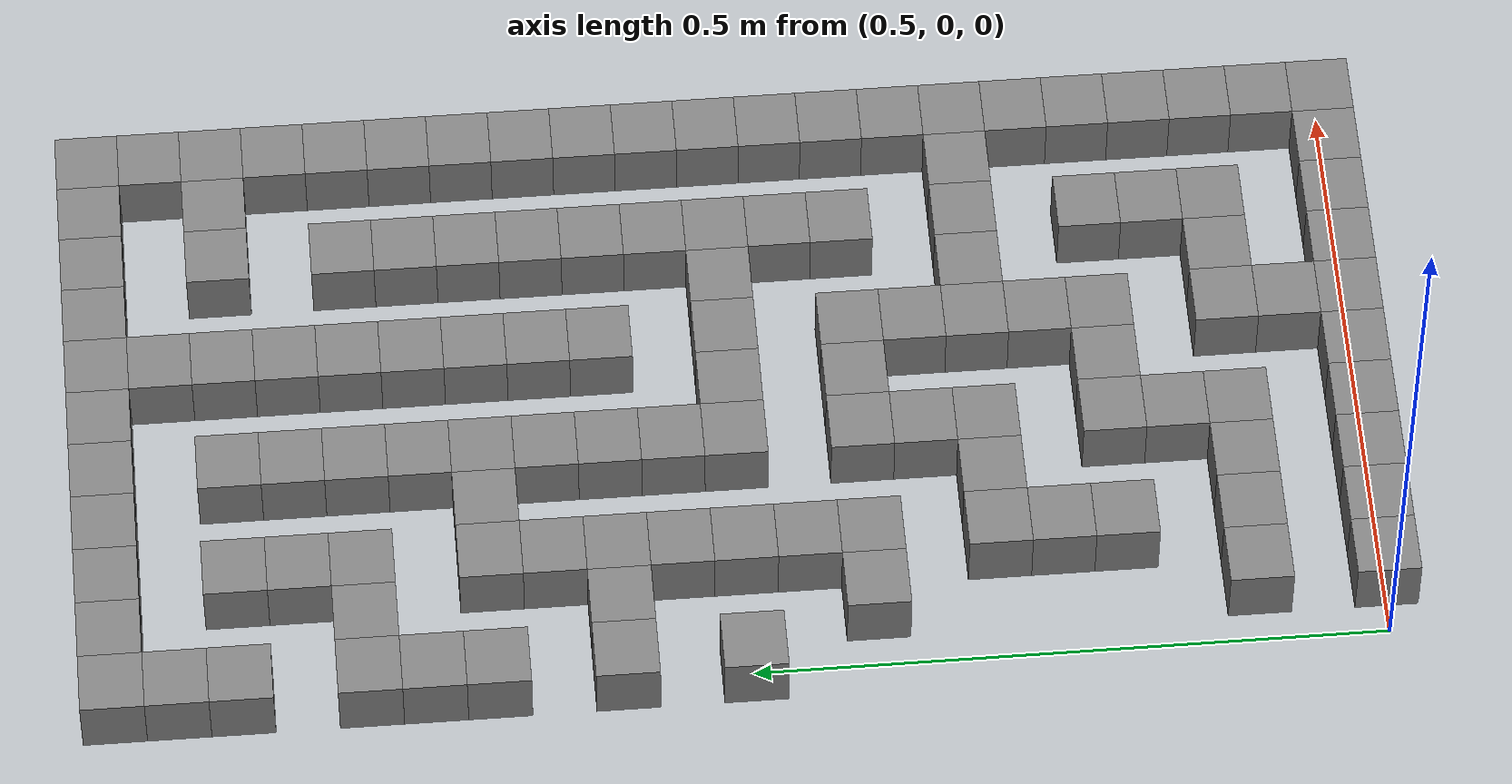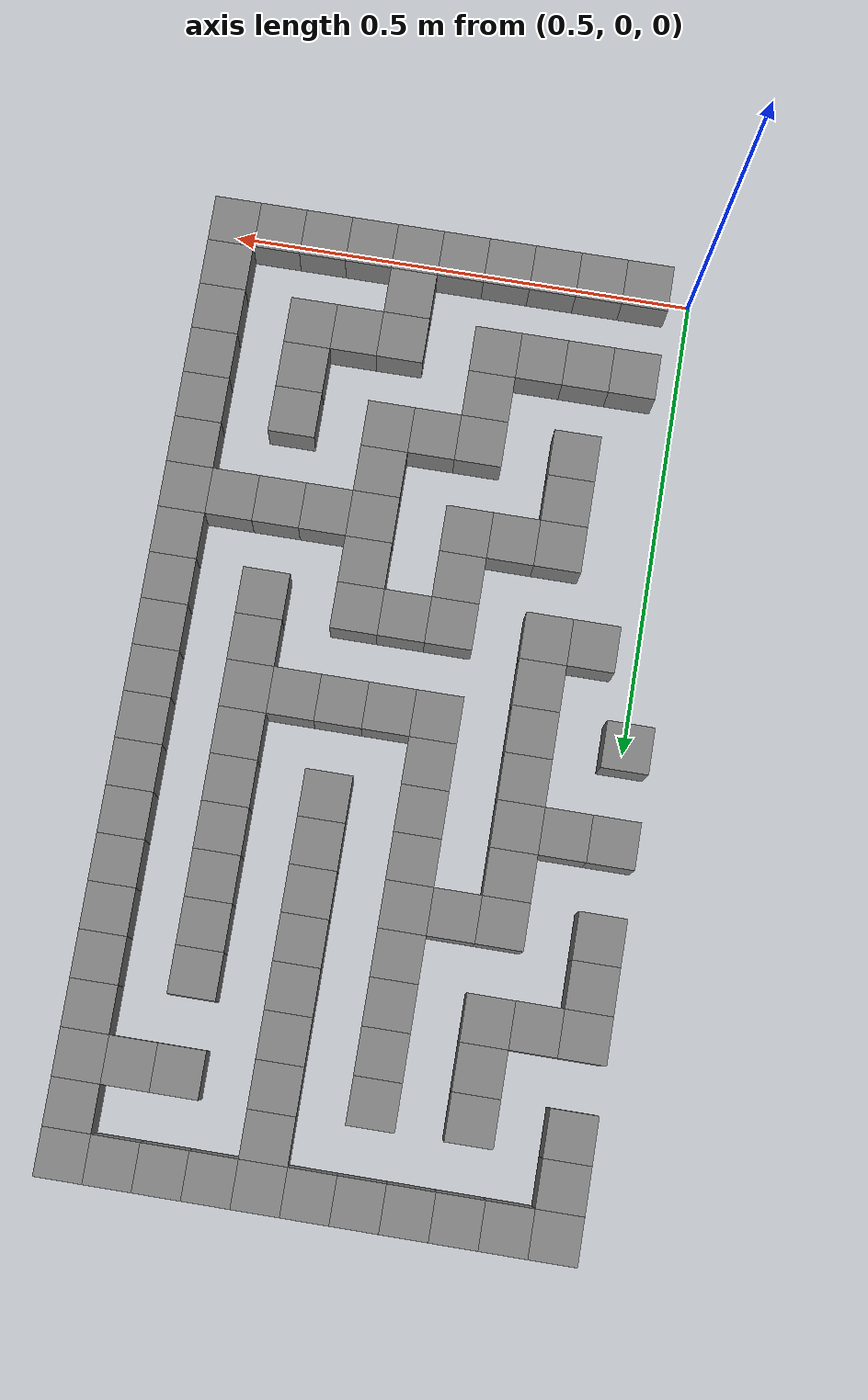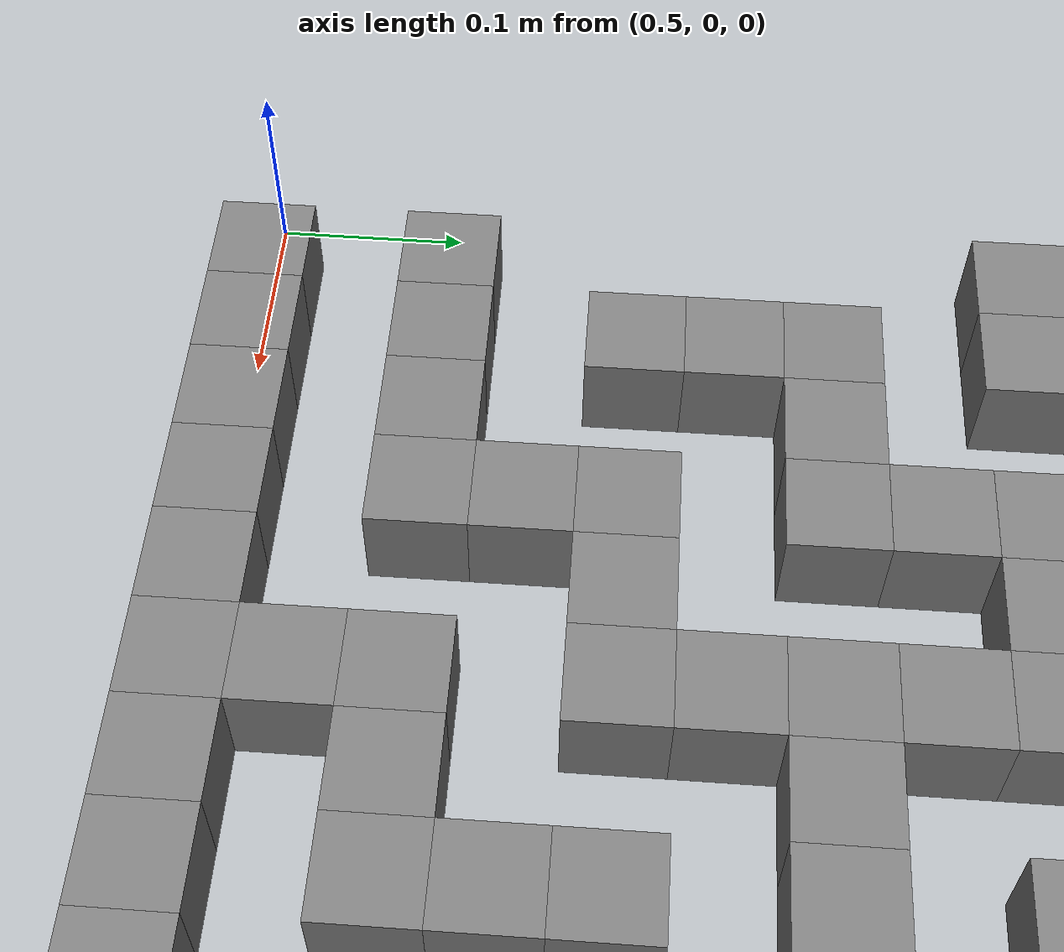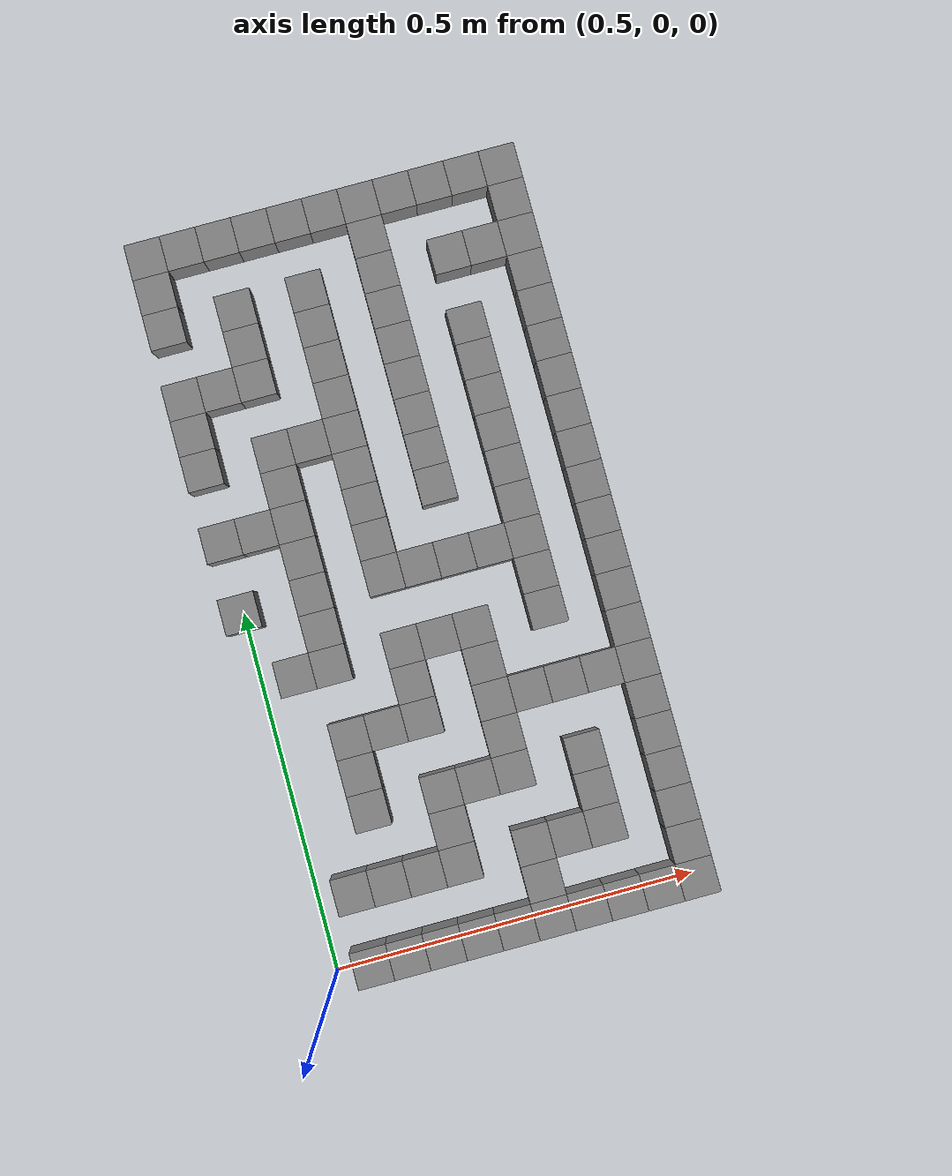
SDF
<sdf version="1.9">
 <model name="maze">
  <static>true</static>
  <link name="wall_10_10">
   <pose>0.5 0.5 0.025 0 0 0</pose>
   <collision name="collision"><geometry><box><size>0.05 0.05 0.05</size></box></geometry></collision>
   <visual name="visual">
    <geometry><box><size>0.05 0.05 0.05</size></box></geometry>
    <material><ambient>0.5 0.5 0.5 1</ambient></material>
   </visual>
  </link>
  <link name="wall_10_12">
   <pose>0.5 0.6000000000000001 0.025 0 0 0</pose>
   <collision name="collision"><geometry><box><size>0.05 0.05 0.05</size></box></geometry></collision>
   <visual name="visual">
    <geometry><box><size>0.05 0.05 0.05</size></box></geometry>
    <material><ambient>0.5 0.5 0.5 1</ambient></material>
   </visual>
  </link>
  <link name="wall_10_14">
   <pose>0.5 0.7000000000000001 0.025 0 0 0</pose>
   <collision name="collision"><geometry><box><size>0.05 0.05 0.05</size></box></geometry></collision>
   <visual name="visual">
    <geometry><box><size>0.05 0.05 0.05</size></box></geometry>
    <material><ambient>0.5 0.5 0.5 1</ambient></material>
   </visual>
  </link>
  <link name="wall_10_15">
   <pose>0.5 0.75 0.025 0 0 0</pose>
   <collision name="collision"><geometry><box><size>0.05 0.05 0.05</size></box></geometry></collision>
   <visual name="visual">
    <geometry><box><size>0.05 0.05 0.05</size></box></geometry>
    <material><ambient>0.5 0.5 0.5 1</ambient></material>
   </visual>
  </link>
  <link name="wall_10_16">
   <pose>0.5 0.8 0.025 0 0 0</pose>
   <collision name="collision"><geometry><box><size>0.05 0.05 0.05</size></box></geometry></collision>
   <visual name="visual">
    <geometry><box><size>0.05 0.05 0.05</size></box></geometry>
    <material><ambient>0.5 0.5 0.5 1</ambient></material>
   </visual>
  </link>
  <link name="wall_10_18">
   <pose>0.5 0.9 0.025 0 0 0</pose>
   <collision name="collision"><geometry><box><size>0.05 0.05 0.05</size></box></geometry></collision>
   <visual name="visual">
    <geometry><box><size>0.05 0.05 0.05</size></box></geometry>
    <material><ambient>0.5 0.5 0.5 1</ambient></material>
   </visual>
  </link>
  <link name="wall_10_19">
   <pose>0.5 0.9500000000000001 0.025 0 0 0</pose>
   <collision name="collision"><geometry><box><size>0.05 0.05 0.05</size></box></geometry></collision>
   <visual name="visual">
    <geometry><box><size>0.05 0.05 0.05</size></box></geometry>
    <material><ambient>0.5 0.5 0.5 1</ambient></material>
   </visual>
  </link>
  <link name="wall_10_20">
   <pose>0.5 1.0 0.025 0 0 0</pose>
   <collision name="collision"><geometry><box><size>0.05 0.05 0.05</size></box></geometry></collision>
   <visual name="visual">
    <geometry><box><size>0.05 0.05 0.05</size></box></geometry>
    <material><ambient>0.5 0.5 0.5 1</ambient></material>
   </visual>
  </link>
  <link name="wall_11_0">
   <pose>0.55 0.0 0.025 0 0 0</pose>
   <collision name="collision"><geometry><box><size>0.05 0.05 0.05</size></box></geometry></collision>
   <visual name="visual">
    <geometry><box><size>0.05 0.05 0.05</size></box></geometry>
    <material><ambient>0.5 0.5 0.5 1</ambient></material>
   </visual>
  </link>
  <link name="wall_11_2">
   <pose>0.55 0.1 0.025 0 0 0</pose>
   <collision name="collision"><geometry><box><size>0.05 0.05 0.05</size></box></geometry></collision>
   <visual name="visual">
    <geometry><box><size>0.05 0.05 0.05</size></box></geometry>
    <material><ambient>0.5 0.5 0.5 1</ambient></material>
   </visual>
  </link>
  <link name="wall_11_8">
   <pose>0.55 0.4 0.025 0 0 0</pose>
   <collision name="collision"><geometry><box><size>0.05 0.05 0.05</size></box></geometry></collision>
   <visual name="visual">
    <geometry><box><size>0.05 0.05 0.05</size></box></geometry>
    <material><ambient>0.5 0.5 0.5 1</ambient></material>
   </visual>
  </link>
  <link name="wall_11_12">
   <pose>0.55 0.6000000000000001 0.025 0 0 0</pose>
   <collision name="collision"><geometry><box><size>0.05 0.05 0.05</size></box></geometry></collision>
   <visual name="visual">
    <geometry><box><size>0.05 0.05 0.05</size></box></geometry>
    <material><ambient>0.5 0.5 0.5 1</ambient></material>
   </visual>
  </link>
  <link name="wall_11_16">
   <pose>0.55 0.8 0.025 0 0 0</pose>
   <collision name="collision"><geometry><box><size>0.05 0.05 0.05</size></box></geometry></collision>
   <visual name="visual">
    <geometry><box><size>0.05 0.05 0.05</size></box></geometry>
    <material><ambient>0.5 0.5 0.5 1</ambient></material>
   </visual>
  </link>
  <link name="wall_11_20">
   <pose>0.55 1.0 0.025 0 0 0</pose>
   <collision name="collision"><geometry><box><size>0.05 0.05 0.05</size></box></geometry></collision>
   <visual name="visual">
    <geometry><box><size>0.05 0.05 0.05</size></box></geometry>
    <material><ambient>0.5 0.5 0.5 1</ambient></material>
   </visual>
  </link>
  <link name="wall_12_0">
   <pose>0.6000000000000001 0.0 0.025 0 0 0</pose>
   <collision name="collision"><geometry><box><size>0.05 0.05 0.05</size></box></geometry></collision>
   <visual name="visual">
    <geometry><box><size>0.05 0.05 0.05</size></box></geometry>
    <material><ambient>0.5 0.5 0.5 1</ambient></material>
   </visual>
  </link>
  <link name="wall_12_2">
   <pose>0.6000000000000001 0.1 0.025 0 0 0</pose>
   <collision name="collision"><geometry><box><size>0.05 0.05 0.05</size></box></geometry></collision>
   <visual name="visual">
    <geometry><box><size>0.05 0.05 0.05</size></box></geometry>
    <material><ambient>0.5 0.5 0.5 1</ambient></material>
   </visual>
  </link>
  <link name="wall_12_4">
   <pose>0.6000000000000001 0.2 0.025 0 0 0</pose>
   <collision name="collision"><geometry><box><size>0.05 0.05 0.05</size></box></geometry></collision>
   <visual name="visual">
    <geometry><box><size>0.05 0.05 0.05</size></box></geometry>
    <material><ambient>0.5 0.5 0.5 1</ambient></material>
   </visual>
  </link>
  <link name="wall_12_5">
   <pose>0.6000000000000001 0.25 0.025 0 0 0</pose>
   <collision name="collision"><geometry><box><size>0.05 0.05 0.05</size></box></geometry></collision>
   <visual name="visual">
    <geometry><box><size>0.05 0.05 0.05</size></box></geometry>
    <material><ambient>0.5 0.5 0.5 1</ambient></material>
   </visual>
  </link>
  <link name="wall_12_6">
   <pose>0.6000000000000001 0.30000000000000004 0.025 0 0 0</pose>
   <collision name="collision"><geometry><box><size>0.05 0.05 0.05</size></box></geometry></collision>
   <visual name="visual">
    <geometry><box><size>0.05 0.05 0.05</size></box></geometry>
    <material><ambient>0.5 0.5 0.5 1</ambient></material>
   </visual>
  </link>
  <link name="wall_12_8">
   <pose>0.6000000000000001 0.4 0.025 0 0 0</pose>
   <collision name="collision"><geometry><box><size>0.05 0.05 0.05</size></box></geometry></collision>
   <visual name="visual">
    <geometry><box><size>0.05 0.05 0.05</size></box></geometry>
    <material><ambient>0.5 0.5 0.5 1</ambient></material>
   </visual>
  </link>
  <link name="wall_12_9">
   <pose>0.6000000000000001 0.45 0.025 0 0 0</pose>
   <collision name="collision"><geometry><box><size>0.05 0.05 0.05</size></box></geometry></collision>
   <visual name="visual">
    <geometry><box><size>0.05 0.05 0.05</size></box></geometry>
    <material><ambient>0.5 0.5 0.5 1</ambient></material>
   </visual>
  </link>
  <link name="wall_12_10">
   <pose>0.6000000000000001 0.5 0.025 0 0 0</pose>
   <collision name="collision"><geometry><box><size>0.05 0.05 0.05</size></box></geometry></collision>
   <visual name="visual">
    <geometry><box><size>0.05 0.05 0.05</size></box></geometry>
    <material><ambient>0.5 0.5 0.5 1</ambient></material>
   </visual>
  </link>
  <link name="wall_12_11">
   <pose>0.6000000000000001 0.55 0.025 0 0 0</pose>
   <collision name="collision"><geometry><box><size>0.05 0.05 0.05</size></box></geometry></collision>
   <visual name="visual">
    <geometry><box><size>0.05 0.05 0.05</size></box></geometry>
    <material><ambient>0.5 0.5 0.5 1</ambient></material>
   </visual>
  </link>
  <link name="wall_12_12">
   <pose>0.6000000000000001 0.6000000000000001 0.025 0 0 0</pose>
   <collision name="collision"><geometry><box><size>0.05 0.05 0.05</size></box></geometry></collision>
   <visual name="visual">
    <geometry><box><size>0.05 0.05 0.05</size></box></geometry>
    <material><ambient>0.5 0.5 0.5 1</ambient></material>
   </visual>
  </link>
  <link name="wall_12_13">
   <pose>0.6000000000000001 0.65 0.025 0 0 0</pose>
   <collision name="collision"><geometry><box><size>0.05 0.05 0.05</size></box></geometry></collision>
   <visual name="visual">
    <geometry><box><size>0.05 0.05 0.05</size></box></geometry>
    <material><ambient>0.5 0.5 0.5 1</ambient></material>
   </visual>
  </link>
  <link name="wall_12_14">
   <pose>0.6000000000000001 0.7000000000000001 0.025 0 0 0</pose>
   <collision name="collision"><geometry><box><size>0.05 0.05 0.05</size></box></geometry></collision>
   <visual name="visual">
    <geometry><box><size>0.05 0.05 0.05</size></box></geometry>
    <material><ambient>0.5 0.5 0.5 1</ambient></material>
   </visual>
  </link>
  <link name="wall_12_16">
   <pose>0.6000000000000001 0.8 0.025 0 0 0</pose>
   <collision name="collision"><geometry><box><size>0.05 0.05 0.05</size></box></geometry></collision>
   <visual name="visual">
    <geometry><box><size>0.05 0.05 0.05</size></box></geometry>
    <material><ambient>0.5 0.5 0.5 1</ambient></material>
   </visual>
  </link>
  <link name="wall_12_17">
   <pose>0.6000000000000001 0.8500000000000001 0.025 0 0 0</pose>
   <collision name="collision"><geometry><box><size>0.05 0.05 0.05</size></box></geometry></collision>
   <visual name="visual">
    <geometry><box><size>0.05 0.05 0.05</size></box></geometry>
    <material><ambient>0.5 0.5 0.5 1</ambient></material>
   </visual>
  </link>
  <link name="wall_12_18">
   <pose>0.6000000000000001 0.9 0.025 0 0 0</pose>
   <collision name="collision"><geometry><box><size>0.05 0.05 0.05</size></box></geometry></collision>
   <visual name="visual">
    <geometry><box><size>0.05 0.05 0.05</size></box></geometry>
    <material><ambient>0.5 0.5 0.5 1</ambient></material>
   </visual>
  </link>
  <link name="wall_12_20">
   <pose>0.6000000000000001 1.0 0.025 0 0 0</pose>
   <collision name="collision"><geometry><box><size>0.05 0.05 0.05</size></box></geometry></collision>
   <visual name="visual">
    <geometry><box><size>0.05 0.05 0.05</size></box></geometry>
    <material><ambient>0.5 0.5 0.5 1</ambient></material>
   </visual>
  </link>
  <link name="wall_13_0">
   <pose>0.65 0.0 0.025 0 0 0</pose>
   <collision name="collision"><geometry><box><size>0.05 0.05 0.05</size></box></geometry></collision>
   <visual name="visual">
    <geometry><box><size>0.05 0.05 0.05</size></box></geometry>
    <material><ambient>0.5 0.5 0.5 1</ambient></material>
   </visual>
  </link>
  <link name="wall_13_2">
   <pose>0.65 0.1 0.025 0 0 0</pose>
   <collision name="collision"><geometry><box><size>0.05 0.05 0.05</size></box></geometry></collision>
   <visual name="visual">
    <geometry><box><size>0.05 0.05 0.05</size></box></geometry>
    <material><ambient>0.5 0.5 0.5 1</ambient></material>
   </visual>
  </link>
  <link name="wall_13_6">
   <pose>0.65 0.30000000000000004 0.025 0 0 0</pose>
   <collision name="collision"><geometry><box><size>0.05 0.05 0.05</size></box></geometry></collision>
   <visual name="visual">
    <geometry><box><size>0.05 0.05 0.05</size></box></geometry>
    <material><ambient>0.5 0.5 0.5 1</ambient></material>
   </visual>
  </link>
  <link name="wall_13_14">
   <pose>0.65 0.7000000000000001 0.025 0 0 0</pose>
   <collision name="collision"><geometry><box><size>0.05 0.05 0.05</size></box></geometry></collision>
   <visual name="visual">
    <geometry><box><size>0.05 0.05 0.05</size></box></geometry>
    <material><ambient>0.5 0.5 0.5 1</ambient></material>
   </visual>
  </link>
  <link name="wall_13_20">
   <pose>0.65 1.0 0.025 0 0 0</pose>
   <collision name="collision"><geometry><box><size>0.05 0.05 0.05</size></box></geometry></collision>
   <visual name="visual">
    <geometry><box><size>0.05 0.05 0.05</size></box></geometry>
    <material><ambient>0.5 0.5 0.5 1</ambient></material>
   </visual>
  </link>
  <link name="wall_14_0">
   <pose>0.7000000000000001 0.0 0.025 0 0 0</pose>
   <collision name="collision"><geometry><box><size>0.05 0.05 0.05</size></box></geometry></collision>
   <visual name="visual">
    <geometry><box><size>0.05 0.05 0.05</size></box></geometry>
    <material><ambient>0.5 0.5 0.5 1</ambient></material>
   </visual>
  </link>
  <link name="wall_14_2">
   <pose>0.7000000000000001 0.1 0.025 0 0 0</pose>
   <collision name="collision"><geometry><box><size>0.05 0.05 0.05</size></box></geometry></collision>
   <visual name="visual">
    <geometry><box><size>0.05 0.05 0.05</size></box></geometry>
    <material><ambient>0.5 0.5 0.5 1</ambient></material>
   </visual>
  </link>
  <link name="wall_14_3">
   <pose>0.7000000000000001 0.15000000000000002 0.025 0 0 0</pose>
   <collision name="collision"><geometry><box><size>0.05 0.05 0.05</size></box></geometry></collision>
   <visual name="visual">
    <geometry><box><size>0.05 0.05 0.05</size></box></geometry>
    <material><ambient>0.5 0.5 0.5 1</ambient></material>
   </visual>
  </link>
  <link name="wall_14_4">
   <pose>0.7000000000000001 0.2 0.025 0 0 0</pose>
   <collision name="collision"><geometry><box><size>0.05 0.05 0.05</size></box></geometry></collision>
   <visual name="visual">
    <geometry><box><size>0.05 0.05 0.05</size></box></geometry>
    <material><ambient>0.5 0.5 0.5 1</ambient></material>
   </visual>
  </link>
  <link name="wall_14_6">
   <pose>0.7000000000000001 0.30000000000000004 0.025 0 0 0</pose>
   <collision name="collision"><geometry><box><size>0.05 0.05 0.05</size></box></geometry></collision>
   <visual name="visual">
    <geometry><box><size>0.05 0.05 0.05</size></box></geometry>
    <material><ambient>0.5 0.5 0.5 1</ambient></material>
   </visual>
  </link>
  <link name="wall_14_7">
   <pose>0.7000000000000001 0.35000000000000003 0.025 0 0 0</pose>
   <collision name="collision"><geometry><box><size>0.05 0.05 0.05</size></box></geometry></collision>
   <visual name="visual">
    <geometry><box><size>0.05 0.05 0.05</size></box></geometry>
    <material><ambient>0.5 0.5 0.5 1</ambient></material>
   </visual>
  </link>
  <link name="wall_14_8">
   <pose>0.7000000000000001 0.4 0.025 0 0 0</pose>
   <collision name="collision"><geometry><box><size>0.05 0.05 0.05</size></box></geometry></collision>
   <visual name="visual">
    <geometry><box><size>0.05 0.05 0.05</size></box></geometry>
    <material><ambient>0.5 0.5 0.5 1</ambient></material>
   </visual>
  </link>
  <link name="wall_14_10">
   <pose>0.7000000000000001 0.5 0.025 0 0 0</pose>
   <collision name="collision"><geometry><box><size>0.05 0.05 0.05</size></box></geometry></collision>
   <visual name="visual">
    <geometry><box><size>0.05 0.05 0.05</size></box></geometry>
    <material><ambient>0.5 0.5 0.5 1</ambient></material>
   </visual>
  </link>
  <link name="wall_14_11">
   <pose>0.7000000000000001 0.55 0.025 0 0 0</pose>
   <collision name="collision"><geometry><box><size>0.05 0.05 0.05</size></box></geometry></collision>
   <visual name="visual">
    <geometry><box><size>0.05 0.05 0.05</size></box></geometry>
    <material><ambient>0.5 0.5 0.5 1</ambient></material>
   </visual>
  </link>
  <link name="wall_14_12">
   <pose>0.7000000000000001 0.6000000000000001 0.025 0 0 0</pose>
   <collision name="collision"><geometry><box><size>0.05 0.05 0.05</size></box></geometry></collision>
   <visual name="visual">
    <geometry><box><size>0.05 0.05 0.05</size></box></geometry>
    <material><ambient>0.5 0.5 0.5 1</ambient></material>
   </visual>
  </link>
  <link name="wall_14_13">
   <pose>0.7000000000000001 0.65 0.025 0 0 0</pose>
   <collision name="collision"><geometry><box><size>0.05 0.05 0.05</size></box></geometry></collision>
   <visual name="visual">
    <geometry><box><size>0.05 0.05 0.05</size></box></geometry>
    <material><ambient>0.5 0.5 0.5 1</ambient></material>
   </visual>
  </link>
  <link name="wall_14_14">
   <pose>0.7000000000000001 0.7000000000000001 0.025 0 0 0</pose>
   <collision name="collision"><geometry><box><size>0.05 0.05 0.05</size></box></geometry></collision>
   <visual name="visual">
    <geometry><box><size>0.05 0.05 0.05</size></box></geometry>
    <material><ambient>0.5 0.5 0.5 1</ambient></material>
   </visual>
  </link>
  <link name="wall_14_15">
   <pose>0.7000000000000001 0.75 0.025 0 0 0</pose>
   <collision name="collision"><geometry><box><size>0.05 0.05 0.05</size></box></geometry></collision>
   <visual name="visual">
    <geometry><box><size>0.05 0.05 0.05</size></box></geometry>
    <material><ambient>0.5 0.5 0.5 1</ambient></material>
   </visual>
  </link>
  <link name="wall_14_16">
   <pose>0.7000000000000001 0.8 0.025 0 0 0</pose>
   <collision name="collision"><geometry><box><size>0.05 0.05 0.05</size></box></geometry></collision>
   <visual name="visual">
    <geometry><box><size>0.05 0.05 0.05</size></box></geometry>
    <material><ambient>0.5 0.5 0.5 1</ambient></material>
   </visual>
  </link>
  <link name="wall_14_17">
   <pose>0.7000000000000001 0.8500000000000001 0.025 0 0 0</pose>
   <collision name="collision"><geometry><box><size>0.05 0.05 0.05</size></box></geometry></collision>
   <visual name="visual">
    <geometry><box><size>0.05 0.05 0.05</size></box></geometry>
    <material><ambient>0.5 0.5 0.5 1</ambient></material>
   </visual>
  </link>
  <link name="wall_14_18">
   <pose>0.7000000000000001 0.9 0.025 0 0 0</pose>
   <collision name="collision"><geometry><box><size>0.05 0.05 0.05</size></box></geometry></collision>
   <visual name="visual">
    <geometry><box><size>0.05 0.05 0.05</size></box></geometry>
    <material><ambient>0.5 0.5 0.5 1</ambient></material>
   </visual>
  </link>
  <link name="wall_14_20">
   <pose>0.7000000000000001 1.0 0.025 0 0 0</pose>
   <collision name="collision"><geometry><box><size>0.05 0.05 0.05</size></box></geometry></collision>
   <visual name="visual">
    <geometry><box><size>0.05 0.05 0.05</size></box></geometry>
    <material><ambient>0.5 0.5 0.5 1</ambient></material>
   </visual>
  </link>
  <link name="wall_15_0">
   <pose>0.75 0.0 0.025 0 0 0</pose>
   <collision name="collision"><geometry><box><size>0.05 0.05 0.05</size></box></geometry></collision>
   <visual name="visual">
    <geometry><box><size>0.05 0.05 0.05</size></box></geometry>
    <material><ambient>0.5 0.5 0.5 1</ambient></material>
   </visual>
  </link>
  <link name="wall_15_4">
   <pose>0.75 0.2 0.025 0 0 0</pose>
   <collision name="collision"><geometry><box><size>0.05 0.05 0.05</size></box></geometry></collision>
   <visual name="visual">
    <geometry><box><size>0.05 0.05 0.05</size></box></geometry>
    <material><ambient>0.5 0.5 0.5 1</ambient></material>
   </visual>
  </link>
  <link name="wall_15_8">
   <pose>0.75 0.4 0.025 0 0 0</pose>
   <collision name="collision"><geometry><box><size>0.05 0.05 0.05</size></box></geometry></collision>
   <visual name="visual">
    <geometry><box><size>0.05 0.05 0.05</size></box></geometry>
    <material><ambient>0.5 0.5 0.5 1</ambient></material>
   </visual>
  </link>
  <link name="wall_15_10">
   <pose>0.75 0.5 0.025 0 0 0</pose>
   <collision name="collision"><geometry><box><size>0.05 0.05 0.05</size></box></geometry></collision>
   <visual name="visual">
    <geometry><box><size>0.05 0.05 0.05</size></box></geometry>
    <material><ambient>0.5 0.5 0.5 1</ambient></material>
   </visual>
  </link>
  <link name="wall_15_20">
   <pose>0.75 1.0 0.025 0 0 0</pose>
   <collision name="collision"><geometry><box><size>0.05 0.05 0.05</size></box></geometry></collision>
   <visual name="visual">
    <geometry><box><size>0.05 0.05 0.05</size></box></geometry>
    <material><ambient>0.5 0.5 0.5 1</ambient></material>
   </visual>
  </link>
  <link name="wall_16_0">
   <pose>0.8 0.0 0.025 0 0 0</pose>
   <collision name="collision"><geometry><box><size>0.05 0.05 0.05</size></box></geometry></collision>
   <visual name="visual">
    <geometry><box><size>0.05 0.05 0.05</size></box></geometry>
    <material><ambient>0.5 0.5 0.5 1</ambient></material>
   </visual>
  </link>
  <link name="wall_16_1">
   <pose>0.8 0.05 0.025 0 0 0</pose>
   <collision name="collision"><geometry><box><size>0.05 0.05 0.05</size></box></geometry></collision>
   <visual name="visual">
    <geometry><box><size>0.05 0.05 0.05</size></box></geometry>
    <material><ambient>0.5 0.5 0.5 1</ambient></material>
   </visual>
  </link>
  <link name="wall_16_2">
   <pose>0.8 0.1 0.025 0 0 0</pose>
   <collision name="collision"><geometry><box><size>0.05 0.05 0.05</size></box></geometry></collision>
   <visual name="visual">
    <geometry><box><size>0.05 0.05 0.05</size></box></geometry>
    <material><ambient>0.5 0.5 0.5 1</ambient></material>
   </visual>
  </link>
  <link name="wall_16_4">
   <pose>0.8 0.2 0.025 0 0 0</pose>
   <collision name="collision"><geometry><box><size>0.05 0.05 0.05</size></box></geometry></collision>
   <visual name="visual">
    <geometry><box><size>0.05 0.05 0.05</size></box></geometry>
    <material><ambient>0.5 0.5 0.5 1</ambient></material>
   </visual>
  </link>
  <link name="wall_16_5">
   <pose>0.8 0.25 0.025 0 0 0</pose>
   <collision name="collision"><geometry><box><size>0.05 0.05 0.05</size></box></geometry></collision>
   <visual name="visual">
    <geometry><box><size>0.05 0.05 0.05</size></box></geometry>
    <material><ambient>0.5 0.5 0.5 1</ambient></material>
   </visual>
  </link>
  <link name="wall_16_6">
   <pose>0.8 0.30000000000000004 0.025 0 0 0</pose>
   <collision name="collision"><geometry><box><size>0.05 0.05 0.05</size></box></geometry></collision>
   <visual name="visual">
    <geometry><box><size>0.05 0.05 0.05</size></box></geometry>
    <material><ambient>0.5 0.5 0.5 1</ambient></material>
   </visual>
  </link>
  <link name="wall_16_7">
   <pose>0.8 0.35000000000000003 0.025 0 0 0</pose>
   <collision name="collision"><geometry><box><size>0.05 0.05 0.05</size></box></geometry></collision>
   <visual name="visual">
    <geometry><box><size>0.05 0.05 0.05</size></box></geometry>
    <material><ambient>0.5 0.5 0.5 1</ambient></material>
   </visual>
  </link>
  <link name="wall_16_8">
   <pose>0.8 0.4 0.025 0 0 0</pose>
   <collision name="collision"><geometry><box><size>0.05 0.05 0.05</size></box></geometry></collision>
   <visual name="visual">
    <geometry><box><size>0.05 0.05 0.05</size></box></geometry>
    <material><ambient>0.5 0.5 0.5 1</ambient></material>
   </visual>
  </link>
  <link name="wall_16_10">
   <pose>0.8 0.5 0.025 0 0 0</pose>
   <collision name="collision"><geometry><box><size>0.05 0.05 0.05</size></box></geometry></collision>
   <visual name="visual">
    <geometry><box><size>0.05 0.05 0.05</size></box></geometry>
    <material><ambient>0.5 0.5 0.5 1</ambient></material>
   </visual>
  </link>
  <link name="wall_16_12">
   <pose>0.8 0.6000000000000001 0.025 0 0 0</pose>
   <collision name="collision"><geometry><box><size>0.05 0.05 0.05</size></box></geometry></collision>
   <visual name="visual">
    <geometry><box><size>0.05 0.05 0.05</size></box></geometry>
    <material><ambient>0.5 0.5 0.5 1</ambient></material>
   </visual>
  </link>
  <link name="wall_16_13">
   <pose>0.8 0.65 0.025 0 0 0</pose>
   <collision name="collision"><geometry><box><size>0.05 0.05 0.05</size></box></geometry></collision>
   <visual name="visual">
    <geometry><box><size>0.05 0.05 0.05</size></box></geometry>
    <material><ambient>0.5 0.5 0.5 1</ambient></material>
   </visual>
  </link>
  <link name="wall_16_14">
   <pose>0.8 0.7000000000000001 0.025 0 0 0</pose>
   <collision name="collision"><geometry><box><size>0.05 0.05 0.05</size></box></geometry></collision>
   <visual name="visual">
    <geometry><box><size>0.05 0.05 0.05</size></box></geometry>
    <material><ambient>0.5 0.5 0.5 1</ambient></material>
   </visual>
  </link>
  <link name="wall_16_15">
   <pose>0.8 0.75 0.025 0 0 0</pose>
   <collision name="collision"><geometry><box><size>0.05 0.05 0.05</size></box></geometry></collision>
   <visual name="visual">
    <geometry><box><size>0.05 0.05 0.05</size></box></geometry>
    <material><ambient>0.5 0.5 0.5 1</ambient></material>
   </visual>
  </link>
  <link name="wall_16_16">
   <pose>0.8 0.8 0.025 0 0 0</pose>
   <collision name="collision"><geometry><box><size>0.05 0.05 0.05</size></box></geometry></collision>
   <visual name="visual">
    <geometry><box><size>0.05 0.05 0.05</size></box></geometry>
    <material><ambient>0.5 0.5 0.5 1</ambient></material>
   </visual>
  </link>
  <link name="wall_16_17">
   <pose>0.8 0.8500000000000001 0.025 0 0 0</pose>
   <collision name="collision"><geometry><box><size>0.05 0.05 0.05</size></box></geometry></collision>
   <visual name="visual">
    <geometry><box><size>0.05 0.05 0.05</size></box></geometry>
    <material><ambient>0.5 0.5 0.5 1</ambient></material>
   </visual>
  </link>
  <link name="wall_16_18">
   <pose>0.8 0.9 0.025 0 0 0</pose>
   <collision name="collision"><geometry><box><size>0.05 0.05 0.05</size></box></geometry></collision>
   <visual name="visual">
    <geometry><box><size>0.05 0.05 0.05</size></box></geometry>
    <material><ambient>0.5 0.5 0.5 1</ambient></material>
   </visual>
  </link>
  <link name="wall_16_19">
   <pose>0.8 0.9500000000000001 0.025 0 0 0</pose>
   <collision name="collision"><geometry><box><size>0.05 0.05 0.05</size></box></geometry></collision>
   <visual name="visual">
    <geometry><box><size>0.05 0.05 0.05</size></box></geometry>
    <material><ambient>0.5 0.5 0.5 1</ambient></material>
   </visual>
  </link>
  <link name="wall_16_20">
   <pose>0.8 1.0 0.025 0 0 0</pose>
   <collision name="collision"><geometry><box><size>0.05 0.05 0.05</size></box></geometry></collision>
   <visual name="visual">
    <geometry><box><size>0.05 0.05 0.05</size></box></geometry>
    <material><ambient>0.5 0.5 0.5 1</ambient></material>
   </visual>
  </link>
  <link name="wall_17_0">
   <pose>0.8500000000000001 0.0 0.025 0 0 0</pose>
   <collision name="collision"><geometry><box><size>0.05 0.05 0.05</size></box></geometry></collision>
   <visual name="visual">
    <geometry><box><size>0.05 0.05 0.05</size></box></geometry>
    <material><ambient>0.5 0.5 0.5 1</ambient></material>
   </visual>
  </link>
  <link name="wall_17_2">
   <pose>0.8500000000000001 0.1 0.025 0 0 0</pose>
   <collision name="collision"><geometry><box><size>0.05 0.05 0.05</size></box></geometry></collision>
   <visual name="visual">
    <geometry><box><size>0.05 0.05 0.05</size></box></geometry>
    <material><ambient>0.5 0.5 0.5 1</ambient></material>
   </visual>
  </link>
  <link name="wall_17_6">
   <pose>0.8500000000000001 0.30000000000000004 0.025 0 0 0</pose>
   <collision name="collision"><geometry><box><size>0.05 0.05 0.05</size></box></geometry></collision>
   <visual name="visual">
    <geometry><box><size>0.05 0.05 0.05</size></box></geometry>
    <material><ambient>0.5 0.5 0.5 1</ambient></material>
   </visual>
  </link>
  <link name="wall_17_10">
   <pose>0.8500000000000001 0.5 0.025 0 0 0</pose>
   <collision name="collision"><geometry><box><size>0.05 0.05 0.05</size></box></geometry></collision>
   <visual name="visual">
    <geometry><box><size>0.05 0.05 0.05</size></box></geometry>
    <material><ambient>0.5 0.5 0.5 1</ambient></material>
   </visual>
  </link>
  <link name="wall_17_20">
   <pose>0.8500000000000001 1.0 0.025 0 0 0</pose>
   <collision name="collision"><geometry><box><size>0.05 0.05 0.05</size></box></geometry></collision>
   <visual name="visual">
    <geometry><box><size>0.05 0.05 0.05</size></box></geometry>
    <material><ambient>0.5 0.5 0.5 1</ambient></material>
   </visual>
  </link>
  <link name="wall_18_0">
   <pose>0.9 0.0 0.025 0 0 0</pose>
   <collision name="collision"><geometry><box><size>0.05 0.05 0.05</size></box></geometry></collision>
   <visual name="visual">
    <geometry><box><size>0.05 0.05 0.05</size></box></geometry>
    <material><ambient>0.5 0.5 0.5 1</ambient></material>
   </visual>
  </link>
  <link name="wall_18_2">
   <pose>0.9 0.1 0.025 0 0 0</pose>
   <collision name="collision"><geometry><box><size>0.05 0.05 0.05</size></box></geometry></collision>
   <visual name="visual">
    <geometry><box><size>0.05 0.05 0.05</size></box></geometry>
    <material><ambient>0.5 0.5 0.5 1</ambient></material>
   </visual>
  </link>
  <link name="wall_18_3">
   <pose>0.9 0.15000000000000002 0.025 0 0 0</pose>
   <collision name="collision"><geometry><box><size>0.05 0.05 0.05</size></box></geometry></collision>
   <visual name="visual">
    <geometry><box><size>0.05 0.05 0.05</size></box></geometry>
    <material><ambient>0.5 0.5 0.5 1</ambient></material>
   </visual>
  </link>
  <link name="wall_18_4">
   <pose>0.9 0.2 0.025 0 0 0</pose>
   <collision name="collision"><geometry><box><size>0.05 0.05 0.05</size></box></geometry></collision>
   <visual name="visual">
    <geometry><box><size>0.05 0.05 0.05</size></box></geometry>
    <material><ambient>0.5 0.5 0.5 1</ambient></material>
   </visual>
  </link>
  <link name="wall_18_6">
   <pose>0.9 0.30000000000000004 0.025 0 0 0</pose>
   <collision name="collision"><geometry><box><size>0.05 0.05 0.05</size></box></geometry></collision>
   <visual name="visual">
    <geometry><box><size>0.05 0.05 0.05</size></box></geometry>
    <material><ambient>0.5 0.5 0.5 1</ambient></material>
   </visual>
  </link>
  <link name="wall_18_8">
   <pose>0.9 0.4 0.025 0 0 0</pose>
   <collision name="collision"><geometry><box><size>0.05 0.05 0.05</size></box></geometry></collision>
   <visual name="visual">
    <geometry><box><size>0.05 0.05 0.05</size></box></geometry>
    <material><ambient>0.5 0.5 0.5 1</ambient></material>
   </visual>
  </link>
  <link name="wall_18_9">
   <pose>0.9 0.45 0.025 0 0 0</pose>
   <collision name="collision"><geometry><box><size>0.05 0.05 0.05</size></box></geometry></collision>
   <visual name="visual">
    <geometry><box><size>0.05 0.05 0.05</size></box></geometry>
    <material><ambient>0.5 0.5 0.5 1</ambient></material>
   </visual>
  </link>
  <link name="wall_18_10">
   <pose>0.9 0.5 0.025 0 0 0</pose>
   <collision name="collision"><geometry><box><size>0.05 0.05 0.05</size></box></geometry></collision>
   <visual name="visual">
    <geometry><box><size>0.05 0.05 0.05</size></box></geometry>
    <material><ambient>0.5 0.5 0.5 1</ambient></material>
   </visual>
  </link>
  <link name="wall_18_11">
   <pose>0.9 0.55 0.025 0 0 0</pose>
   <collision name="collision"><geometry><box><size>0.05 0.05 0.05</size></box></geometry></collision>
   <visual name="visual">
    <geometry><box><size>0.05 0.05 0.05</size></box></geometry>
    <material><ambient>0.5 0.5 0.5 1</ambient></material>
   </visual>
  </link>
  <link name="wall_18_12">
   <pose>0.9 0.6000000000000001 0.025 0 0 0</pose>
   <collision name="collision"><geometry><box><size>0.05 0.05 0.05</size></box></geometry></collision>
   <visual name="visual">
    <geometry><box><size>0.05 0.05 0.05</size></box></geometry>
    <material><ambient>0.5 0.5 0.5 1</ambient></material>
   </visual>
  </link>
  <link name="wall_18_13">
   <pose>0.9 0.65 0.025 0 0 0</pose>
   <collision name="collision"><geometry><box><size>0.05 0.05 0.05</size></box></geometry></collision>
   <visual name="visual">
    <geometry><box><size>0.05 0.05 0.05</size></box></geometry>
    <material><ambient>0.5 0.5 0.5 1</ambient></material>
   </visual>
  </link>
  <link name="wall_18_14">
   <pose>0.9 0.7000000000000001 0.025 0 0 0</pose>
   <collision name="collision"><geometry><box><size>0.05 0.05 0.05</size></box></geometry></collision>
   <visual name="visual">
    <geometry><box><size>0.05 0.05 0.05</size></box></geometry>
    <material><ambient>0.5 0.5 0.5 1</ambient></material>
   </visual>
  </link>
  <link name="wall_18_15">
   <pose>0.9 0.75 0.025 0 0 0</pose>
   <collision name="collision"><geometry><box><size>0.05 0.05 0.05</size></box></geometry></collision>
   <visual name="visual">
    <geometry><box><size>0.05 0.05 0.05</size></box></geometry>
    <material><ambient>0.5 0.5 0.5 1</ambient></material>
   </visual>
  </link>
  <link name="wall_18_16">
   <pose>0.9 0.8 0.025 0 0 0</pose>
   <collision name="collision"><geometry><box><size>0.05 0.05 0.05</size></box></geometry></collision>
   <visual name="visual">
    <geometry><box><size>0.05 0.05 0.05</size></box></geometry>
    <material><ambient>0.5 0.5 0.5 1</ambient></material>
   </visual>
  </link>
  <link name="wall_18_18">
   <pose>0.9 0.9 0.025 0 0 0</pose>
   <collision name="collision"><geometry><box><size>0.05 0.05 0.05</size></box></geometry></collision>
   <visual name="visual">
    <geometry><box><size>0.05 0.05 0.05</size></box></geometry>
    <material><ambient>0.5 0.5 0.5 1</ambient></material>
   </visual>
  </link>
  <link name="wall_18_20">
   <pose>0.9 1.0 0.025 0 0 0</pose>
   <collision name="collision"><geometry><box><size>0.05 0.05 0.05</size></box></geometry></collision>
   <visual name="visual">
    <geometry><box><size>0.05 0.05 0.05</size></box></geometry>
    <material><ambient>0.5 0.5 0.5 1</ambient></material>
   </visual>
  </link>
  <link name="wall_19_0">
   <pose>0.9500000000000001 0.0 0.025 0 0 0</pose>
   <collision name="collision"><geometry><box><size>0.05 0.05 0.05</size></box></geometry></collision>
   <visual name="visual">
    <geometry><box><size>0.05 0.05 0.05</size></box></geometry>
    <material><ambient>0.5 0.5 0.5 1</ambient></material>
   </visual>
  </link>
  <link name="wall_19_6">
   <pose>0.9500000000000001 0.30000000000000004 0.025 0 0 0</pose>
   <collision name="collision"><geometry><box><size>0.05 0.05 0.05</size></box></geometry></collision>
   <visual name="visual">
    <geometry><box><size>0.05 0.05 0.05</size></box></geometry>
    <material><ambient>0.5 0.5 0.5 1</ambient></material>
   </visual>
  </link>
  <link name="wall_19_18">
   <pose>0.9500000000000001 0.9 0.025 0 0 0</pose>
   <collision name="collision"><geometry><box><size>0.05 0.05 0.05</size></box></geometry></collision>
   <visual name="visual">
    <geometry><box><size>0.05 0.05 0.05</size></box></geometry>
    <material><ambient>0.5 0.5 0.5 1</ambient></material>
   </visual>
  </link>
  <link name="wall_19_20">
   <pose>0.9500000000000001 1.0 0.025 0 0 0</pose>
   <collision name="collision"><geometry><box><size>0.05 0.05 0.05</size></box></geometry></collision>
   <visual name="visual">
    <geometry><box><size>0.05 0.05 0.05</size></box></geometry>
    <material><ambient>0.5 0.5 0.5 1</ambient></material>
   </visual>
  </link>
  <link name="wall_20_0">
   <pose>1.0 0.0 0.025 0 0 0</pose>
   <collision name="collision"><geometry><box><size>0.05 0.05 0.05</size></box></geometry></collision>
   <visual name="visual">
    <geometry><box><size>0.05 0.05 0.05</size></box></geometry>
    <material><ambient>0.5 0.5 0.5 1</ambient></material>
   </visual>
  </link>
  <link name="wall_20_1">
   <pose>1.0 0.05 0.025 0 0 0</pose>
   <collision name="collision"><geometry><box><size>0.05 0.05 0.05</size></box></geometry></collision>
   <visual name="visual">
    <geometry><box><size>0.05 0.05 0.05</size></box></geometry>
    <material><ambient>0.5 0.5 0.5 1</ambient></material>
   </visual>
  </link>
  <link name="wall_20_2">
   <pose>1.0 0.1 0.025 0 0 0</pose>
   <collision name="collision"><geometry><box><size>0.05 0.05 0.05</size></box></geometry></collision>
   <visual name="visual">
    <geometry><box><size>0.05 0.05 0.05</size></box></geometry>
    <material><ambient>0.5 0.5 0.5 1</ambient></material>
   </visual>
  </link>
  <link name="wall_20_3">
   <pose>1.0 0.15000000000000002 0.025 0 0 0</pose>
   <collision name="collision"><geometry><box><size>0.05 0.05 0.05</size></box></geometry></collision>
   <visual name="visual">
    <geometry><box><size>0.05 0.05 0.05</size></box></geometry>
    <material><ambient>0.5 0.5 0.5 1</ambient></material>
   </visual>
  </link>
  <link name="wall_20_4">
   <pose>1.0 0.2 0.025 0 0 0</pose>
   <collision name="collision"><geometry><box><size>0.05 0.05 0.05</size></box></geometry></collision>
   <visual name="visual">
    <geometry><box><size>0.05 0.05 0.05</size></box></geometry>
    <material><ambient>0.5 0.5 0.5 1</ambient></material>
   </visual>
  </link>
  <link name="wall_20_5">
   <pose>1.0 0.25 0.025 0 0 0</pose>
   <collision name="collision"><geometry><box><size>0.05 0.05 0.05</size></box></geometry></collision>
   <visual name="visual">
    <geometry><box><size>0.05 0.05 0.05</size></box></geometry>
    <material><ambient>0.5 0.5 0.5 1</ambient></material>
   </visual>
  </link>
  <link name="wall_20_6">
   <pose>1.0 0.30000000000000004 0.025 0 0 0</pose>
   <collision name="collision"><geometry><box><size>0.05 0.05 0.05</size></box></geometry></collision>
   <visual name="visual">
    <geometry><box><size>0.05 0.05 0.05</size></box></geometry>
    <material><ambient>0.5 0.5 0.5 1</ambient></material>
   </visual>
  </link>
  <link name="wall_20_7">
   <pose>1.0 0.35000000000000003 0.025 0 0 0</pose>
   <collision name="collision"><geometry><box><size>0.05 0.05 0.05</size></box></geometry></collision>
   <visual name="visual">
    <geometry><box><size>0.05 0.05 0.05</size></box></geometry>
    <material><ambient>0.5 0.5 0.5 1</ambient></material>
   </visual>
  </link>
  <link name="wall_20_8">
   <pose>1.0 0.4 0.025 0 0 0</pose>
   <collision name="collision"><geometry><box><size>0.05 0.05 0.05</size></box></geometry></collision>
   <visual name="visual">
    <geometry><box><size>0.05 0.05 0.05</size></box></geometry>
    <material><ambient>0.5 0.5 0.5 1</ambient></material>
   </visual>
  </link>
  <link name="wall_20_9">
   <pose>1.0 0.45 0.025 0 0 0</pose>
   <collision name="collision"><geometry><box><size>0.05 0.05 0.05</size></box></geometry></collision>
   <visual name="visual">
    <geometry><box><size>0.05 0.05 0.05</size></box></geometry>
    <material><ambient>0.5 0.5 0.5 1</ambient></material>
   </visual>
  </link>
  <link name="wall_20_10">
   <pose>1.0 0.5 0.025 0 0 0</pose>
   <collision name="collision"><geometry><box><size>0.05 0.05 0.05</size></box></geometry></collision>
   <visual name="visual">
    <geometry><box><size>0.05 0.05 0.05</size></box></geometry>
    <material><ambient>0.5 0.5 0.5 1</ambient></material>
   </visual>
  </link>
  <link name="wall_20_11">
   <pose>1.0 0.55 0.025 0 0 0</pose>
   <collision name="collision"><geometry><box><size>0.05 0.05 0.05</size></box></geometry></collision>
   <visual name="visual">
    <geometry><box><size>0.05 0.05 0.05</size></box></geometry>
    <material><ambient>0.5 0.5 0.5 1</ambient></material>
   </visual>
  </link>
  <link name="wall_20_12">
   <pose>1.0 0.6000000000000001 0.025 0 0 0</pose>
   <collision name="collision"><geometry><box><size>0.05 0.05 0.05</size></box></geometry></collision>
   <visual name="visual">
    <geometry><box><size>0.05 0.05 0.05</size></box></geometry>
    <material><ambient>0.5 0.5 0.5 1</ambient></material>
   </visual>
  </link>
  <link name="wall_20_13">
   <pose>1.0 0.65 0.025 0 0 0</pose>
   <collision name="collision"><geometry><box><size>0.05 0.05 0.05</size></box></geometry></collision>
   <visual name="visual">
    <geometry><box><size>0.05 0.05 0.05</size></box></geometry>
    <material><ambient>0.5 0.5 0.5 1</ambient></material>
   </visual>
  </link>
  <link name="wall_20_14">
   <pose>1.0 0.7000000000000001 0.025 0 0 0</pose>
   <collision name="collision"><geometry><box><size>0.05 0.05 0.05</size></box></geometry></collision>
   <visual name="visual">
    <geometry><box><size>0.05 0.05 0.05</size></box></geometry>
    <material><ambient>0.5 0.5 0.5 1</ambient></material>
   </visual>
  </link>
  <link name="wall_20_15">
   <pose>1.0 0.75 0.025 0 0 0</pose>
   <collision name="collision"><geometry><box><size>0.05 0.05 0.05</size></box></geometry></collision>
   <visual name="visual">
    <geometry><box><size>0.05 0.05 0.05</size></box></geometry>
    <material><ambient>0.5 0.5 0.5 1</ambient></material>
   </visual>
  </link>
  <link name="wall_20_16">
   <pose>1.0 0.8 0.025 0 0 0</pose>
   <collision name="collision"><geometry><box><size>0.05 0.05 0.05</size></box></geometry></collision>
   <visual name="visual">
    <geometry><box><size>0.05 0.05 0.05</size></box></geometry>
    <material><ambient>0.5 0.5 0.5 1</ambient></material>
   </visual>
  </link>
  <link name="wall_20_17">
   <pose>1.0 0.8500000000000001 0.025 0 0 0</pose>
   <collision name="collision"><geometry><box><size>0.05 0.05 0.05</size></box></geometry></collision>
   <visual name="visual">
    <geometry><box><size>0.05 0.05 0.05</size></box></geometry>
    <material><ambient>0.5 0.5 0.5 1</ambient></material>
   </visual>
  </link>
  <link name="wall_20_18">
   <pose>1.0 0.9 0.025 0 0 0</pose>
   <collision name="collision"><geometry><box><size>0.05 0.05 0.05</size></box></geometry></collision>
   <visual name="visual">
    <geometry><box><size>0.05 0.05 0.05</size></box></geometry>
    <material><ambient>0.5 0.5 0.5 1</ambient></material>
   </visual>
  </link>
  <link name="wall_20_19">
   <pose>1.0 0.9500000000000001 0.025 0 0 0</pose>
   <collision name="collision"><geometry><box><size>0.05 0.05 0.05</size></box></geometry></collision>
   <visual name="visual">
    <geometry><box><size>0.05 0.05 0.05</size></box></geometry>
    <material><ambient>0.5 0.5 0.5 1</ambient></material>
   </visual>
  </link>
  <link name="wall_20_20">
   <pose>1.0 1.0 0.025 0 0 0</pose>
   <collision name="collision"><geometry><box><size>0.05 0.05 0.05</size></box></geometry></collision>
   <visual name="visual">
    <geometry><box><size>0.05 0.05 0.05</size></box></geometry>
    <material><ambient>0.5 0.5 0.5 1</ambient></material>
   </visual>
  </link>
 </model>
</sdf>
